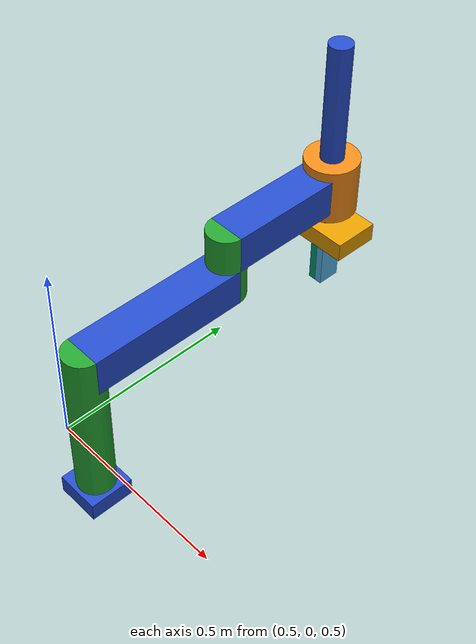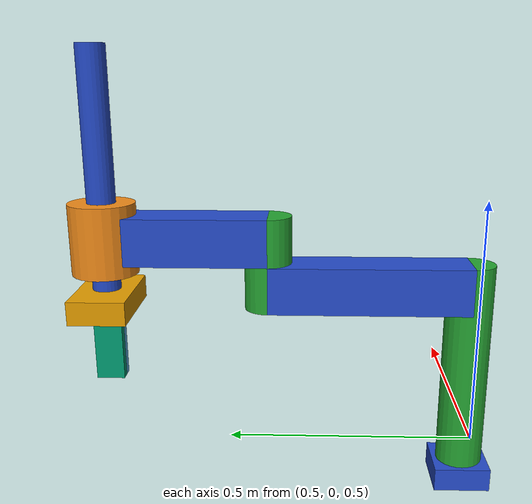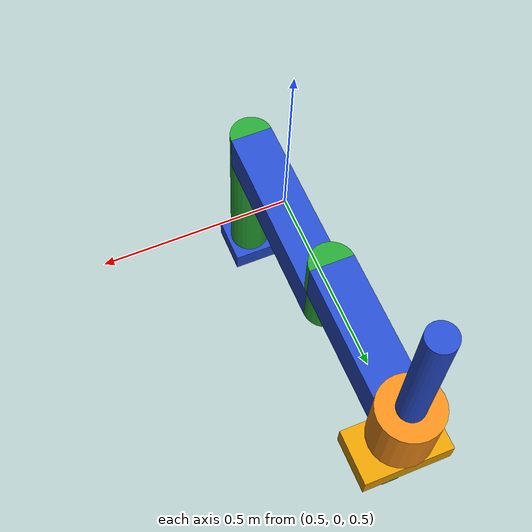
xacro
<?xml version="1.0"?>
<robot xmlns:xacro="http://www.ros.org/wiki/xacro" name="scara">
    <xacro:arg name="initial_positions_file" default="initial_positions.yaml" />

    <!-- Import scara urdf file -->
    <xacro:include filename="$(find scara_description)/urdf/scara_main.urdf.xacro" />

    <!-- Import control_xacro -->
    <xacro:include filename="scara.ros2_control.xacro" />

    <xacro:scara_ros2_control name="FakeSystem" initial_positions_file="$(arg initial_positions_file)"/>

</robot>

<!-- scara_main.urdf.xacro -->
<robot name="scara" xmlns:xacro="http://www.ros.org/wiki/xacro">

  <!-- INCLUDE FILES -->
  <xacro:include filename="$(find scara_description)/urdf/scara.urdf.xacro"/>
  <xacro:include filename="$(find scara_description)/urdf/ros2control.xacro"/>
  <xacro:include filename="$(find scara_description)/urdf/gazebo.xacro"/>

  <!-- BUILD ROBOT -->
  <xacro:ros2_control_block/>
  <xacro:gazebo_block/>

</robot>

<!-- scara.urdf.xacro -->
<robot name = "scara" xmlns:xacro="http://www.ros.org/wiki/xacro">

  <!-- Used for fixing robot to 'base_link' -->
  <link name="world"/>
  <xacro:arg name="is_ignition" default="true"/>

  <!-- Base Link -->
  <link name = "base_link">
    <visual>
      <geometry>
        <box size = "0.12 0.12 0.05"/>
      </geometry>
      <material name = "blue"/>
      <origin xyz = "0 0 0.025"/>
    </visual>
    <inertial>
      <mass value="1" />
      <origin xyz="0 0 0.025" rpy="0 0 0" />
      <inertia ixx="1" ixy="0" ixz="0" iyy="1" iyz="0" izz="1" />
    </inertial>
    <collision>
      <geometry>
        <box size = "0.12 0.12 0.05"/>
      </geometry>
      <material name = "blue"/>
      <origin xyz = "0 0 0.025"/>
    </collision>
  </link>

  <joint name="base2world" type="fixed">
    <parent link="world"/>
    <child link="base_link"/>
    <origin xyz="0.6 0 0.35" rpy="0 0 1.57"/>
  </joint>

  <!-- revolute1 1 -->
  <link name = "revolute1">
    <visual>
      <geometry>
        <cylinder length = "0.45" radius = "0.05"/>
      </geometry>
      <material name = "green"/>
      <origin xyz = "0 0 0.225"/>
    </visual>
    <inertial>
      <mass value="0.5" />
      <origin xyz="0 0 0.05" rpy="0 0 0" />
      <inertia ixx="0.5" ixy="0" ixz="0" iyy="0.5" iyz="0" izz="0.5" />
    </inertial>
    <collision>
      <geometry>
        <cylinder length = "0.45" radius = "0.05"/>
      </geometry>
      <material name = "green"/>
      <origin xyz = "0 0 0.225"/>
    </collision>
  </link>

  <joint name = "joint1" type="revolute">
    <parent link = "base_link"/>
    <child link = "revolute1"/>
    <origin xyz = "0 0 0.05"/>
    <limit effort="1000.0" lower="-3.14" upper="3.14" velocity="0.5"/>
    <axis xyz = "0 0 1"/>
    <dynamics damping="0.2" friction="0.1" />
  </joint>

  <!-- link 1 -->
  <link name = "link1">
    <visual>
      <geometry>
        <box size = "0.1 0.1 0.425"/>
      </geometry>
      <material name = "blue"/>
      <origin rpy = "0 1.571 0" xyz = "0.2125 0 0"/>
    </visual>
    <inertial>
      <mass value="0.5" />
      <origin xyz="0.2125 0 0" rpy="0 0 0" />
      <inertia ixx="0.5" ixy="0" ixz="0" iyy="0.5" iyz="0" izz="0.5" />
    </inertial>
    <collision>
      <geometry>
        <box size = "0.1 0.1 0.425"/>
      </geometry>
      <material name = "blue"/>
      <origin rpy = "0 1.571 0" xyz = "0.2125 0 0"/>
    </collision>
  </link>

  <joint name = "link12revolute1" type="fixed">
    <parent link = "revolute1"/>
    <child link = "link1"/>
    <origin xyz = "0 0 0.4"/>
    <limit effort="1000.0" lower="-1.57" upper="1.57" velocity="0.5"/>
    <axis xyz = "0 0 1"/>
    <dynamics damping="0.2" friction="0.1" />

  </joint>

  <!-- revolute 2 -->
  <link name = "revolute2">
    <visual>
      <geometry>
        <cylinder length = "0.2" radius = "0.05"/>
      </geometry>
      <material name = "green"/>
      <origin rpy = "0 0 0" xyz = "0 0 0"/>
    </visual>
    <inertial>
      <mass value="0.5" />
      <origin xyz="0 0 0" rpy="0 0 0" />
      <inertia ixx="0.5" ixy="0" ixz="0" iyy="0.5" iyz="0" izz="0.5" />
    </inertial>
    <collision>
      <geometry>
        <cylinder length = "0.2" radius = "0.05"/>
      </geometry>
      <material name = "green"/>
      <origin rpy = "0 0 0" xyz = "0 0 0"/>
    </collision>
  </link>

  <joint name = "joint2" type="revolute">
    <parent link = "link1"/>
    <child link = "revolute2"/>
    <origin xyz = "0.425 0 0.05"/>
    <limit effort="1000.0" lower="-3.14" upper="3.14" velocity="0.5"/>
    <axis xyz = "0 0 1"/>
    <dynamics damping="0.2" friction="0.1" />
  </joint>

  <!-- link 2 -->
  <link name = "link2">
    <visual>
      <geometry>
        <box size = "0.1 0.1 0.345"/>
      </geometry>
      <material name = "blue"/>
      <origin rpy = "0 1.571 0" xyz = "0.1725 0 0"/>
    </visual>
    <inertial>
      <mass value="0.5" />
      <origin xyz="0.1725 0 0" rpy="0 0 0" />
      <inertia ixx="0.5" ixy="0" ixz="0" iyy="0.5" iyz="0" izz="0.5" />
    </inertial>
    <collision>
      <geometry>
        <box size = "0.1 0.1 0.345"/>
      </geometry>
      <material name = "blue"/>
      <origin rpy = "0 1.571 0" xyz = "0.1725 0 0"/>
    </collision>
  </link>

  <joint name = "link22revolute2" type="fixed">
    <parent link = "revolute2"/>
    <child link = "link2"/>
    <origin xyz = "0 0 0.05"/>
  </joint>

  <!-- prismatic 3 -->
  <link name = "prismatic3">
    <visual>
      <geometry>
        <cylinder length = "0.15" radius = "0.07"/>
      </geometry>
      <material name = "orange"/>
      <origin xyz = "0 0 0"/>
    </visual>
    <inertial>
      <mass value="0.5" />
      <origin xyz="0 0 0" rpy="0 0 0" />
      <inertia ixx="0.5" ixy="0" ixz="0" iyy="0.5" iyz="0" izz="0.5" />
    </inertial>
    <collision>
      <geometry>
        <cylinder length = "0.15" radius = "0.07"/>
      </geometry>
      <material name = "orange"/>
      <origin xyz = "0 0 0"/>
    </collision>
  </link>

  <joint name = "prismatic32link2" type="fixed">
    <parent link = "link2"/>
    <child link = "prismatic3"/>
    <origin rpy = "3.14 0 0" xyz = "0.345 0 0"/>
  </joint>

  <!-- link 3 -->
  <link name = "link3">
    <visual>
      <geometry>
        <cylinder length = "0.5" radius = "0.03"/>
      </geometry>
      <material name = "blue"/>
      <origin xyz = "0 0 -0.25"/>
    </visual>
    <inertial>
      <mass value="0.2" />
      <origin xyz="0 0 -0.25" rpy="0 0 0" />
      <inertia ixx="0.2" ixy="0" ixz="0" iyy="0.2" iyz="0" izz="0.2" />
    </inertial>
    <collision>
      <geometry>
        <cylinder length = "0.5" radius = "0.03"/>
      </geometry>
      <material name = "blue"/>
      <origin xyz = "0 0 -0.25"/>
    </collision>
  </link>

  <joint name = "joint3" type="prismatic">
    <parent link = "prismatic3"/>
    <child link = "link3"/>
    <origin xyz = "0 0 0.11"/>
    <limit effort="1000" lower="-0.00001" upper="0.3" velocity="0.1"/>
    <axis xyz = "0 0 1"/>
    <dynamics damping="0.4" friction="5" />
  </joint>

  <link name="gripperhand">
    <visual>
        <origin xyz="0 0 0" rpy="0 0 0" />
        <geometry>
        <box size="0.12 0.2 0.05" />
        </geometry>
    </visual>
    <collision>
        <origin xyz="0 0 0" rpy="0 0 0" />
        <geometry>
        <box size="0.12 0.2 0.05" />
        </geometry>
    </collision>
    <inertial>
        <mass value="0.1" />
        <origin xyz="0 0 0" />
        <inertia ixx="0.1" ixy="0.0" ixz="0.0" iyy="1.0" iyz="0.0" izz="1.0" />
    </inertial>
  </link>

  <link name="leftfinger1">
    <visual>
        <origin xyz="0 0 0" rpy="0 0 0" />
        <geometry>
        <box size="0.06 0.02 0.15" />
        </geometry>
    </visual>
    <collision>
        <origin xyz="0 0 0" rpy="0 0 0" />
        <geometry>
        <box size="0.06 0.02 0.15" />
        </geometry>
    </collision>
    <inertial>
        <mass value="1.0" />
        <origin xyz="0 0 0" />
        <inertia ixx="1.0" ixy="0.0" ixz="0.0" iyy="1.0" iyz="0.0" izz="1.0" />
    </inertial>
  </link>

    <link name="rightfinger1">
    <visual>
        <origin xyz="0 0 0" rpy="0 0 0" />
        <geometry>
        <box size="0.06 0.02 0.15" />
        </geometry>
    </visual>
    <collision>
        <origin xyz="0 0 0" rpy="0 0 0" />
        <geometry>
        <box size="0.06 0.02 0.15" />
        </geometry>
    </collision>
    <inertial>
        <mass value="1.0" />
        <origin xyz="0 0 0" />
        <inertia ixx="1.0" ixy="0.0" ixz="0.0" iyy="1.0" iyz="0.0" izz="1.0" />
    </inertial>
  </link>

  <link name="tcp"/>

<joint name="tcp_joint" type="fixed">
  <parent link="gripperhand"/>
  <child link="tcp"/>
  <origin xyz="0 0 0.025"/>
</joint>

    <joint name="link32gripperhand" type="revolute">
        <parent link="link3" />
        <child link="gripperhand" />
        <origin xyz="0 0 0.025" rpy="0 0 0" />
        <axis xyz="0 0 1" />
        <limit lower="-3.14" upper="3.14" effort="100" velocity="100" />
    </joint>
    <joint name="leftfingermove" type="prismatic">
        <parent link="gripperhand" />
        <child link="leftfinger1" />
        <origin xyz="0 0.01 0.1" rpy="0 0 0" />
        <axis xyz="0 1 0" />
        <limit lower="0" upper="0.08" effort="100" velocity="100" />
    </joint>
        <joint name="rightfingermove" type="prismatic">
        <parent link="gripperhand" />
        <child link="rightfinger1" />
        <origin xyz="0 -0.01 0.1" rpy="0 0 0" />
        <axis xyz="0 1 0" />
        <limit lower="-0.08" upper="0" effort="100" velocity="100" />
    </joint>

</robot>
